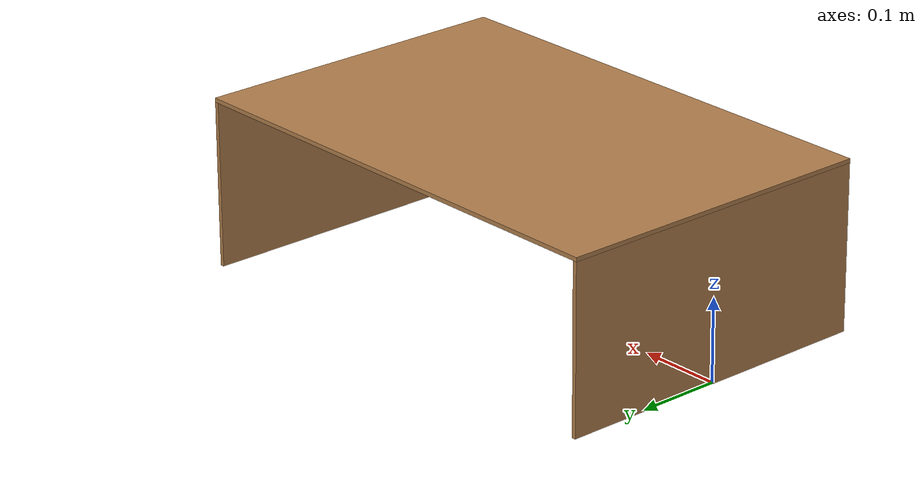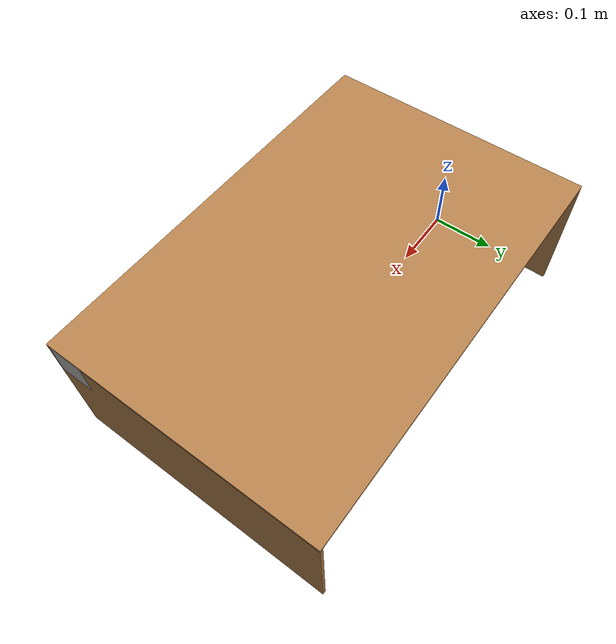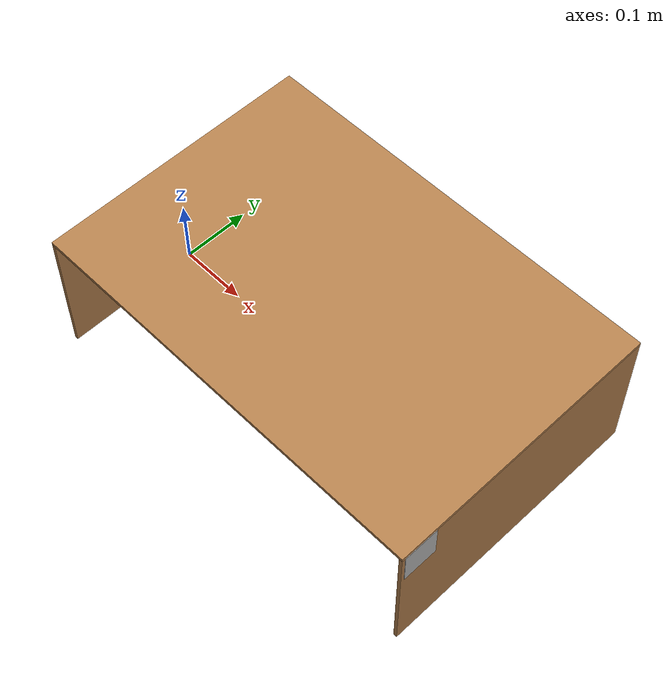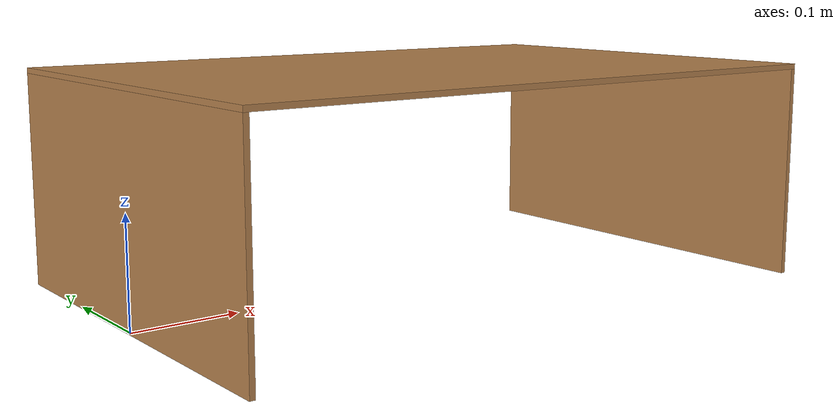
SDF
<?xml version='1.0'?>
<sdf version='1.7'>
  <model name='qr_table4'>

    <link name='table_leg_1'>

      <pose>0 0 0.1 0 0 0</pose>
	<static>false</static>
      <visual name='visual'>
        <pose>0 0 0 0 -0 0</pose>
        <geometry>
          <box>
            <size>0.005 0.4 0.2</size>
          </box>
        </geometry>
        <material>
          <lighting>1</lighting>
          <script>
            <uri>file://media/materials/scripts/gazebo.material</uri>
            <name>Gazebo/Wood</name>
          </script>
          <shader type='pixel'>
            <normal_map>__default__</normal_map>
          </shader>
          <ambient>0.3 0.3 0.3 1</ambient>
          <diffuse>0.7 0.7 0.7 1</diffuse>
          <specular>0.01 0.01 0.01 1</specular>
          <emissive>0 0 0 1</emissive>
        </material>
        <transparency>0</transparency>
        <cast_shadows>1</cast_shadows>
      </visual>

      <collision name="table_leg_1_collision">
        <pose>0 0 0.1 0 0 0</pose>
        <geometry>
          <box>
            <size>0.005 0.4 0.2</size>
          </box>
        </geometry>
      </collision>

    </link>

    <link name='table'>

      <pose>0.2975 0 0.2025 0 -0 0</pose>
	<static>false</static>
      <visual name='visual'>
        <pose>0.0 0 0 0 -0 0</pose>
        <geometry>
          <box>
            <size>0.6 0.4 0.005</size>
          </box>
        </geometry>
        <material>
          <lighting>1</lighting>
          <script>
            <uri>file://media/materials/scripts/gazebo.material</uri>
            <name>Gazebo/Wood</name>
          </script>
          <shader type='pixel'>
            <normal_map>__default__</normal_map>
          </shader>
          <ambient>0.3 0.3 0.3 1</ambient>
          <diffuse>0.7 0.7 0.7 1</diffuse>
          <specular>0.01 0.01 0.01 1</specular>
          <emissive>0 0 0 1</emissive>
        </material>
        <transparency>0</transparency>
        <cast_shadows>1</cast_shadows>
      </visual>

      <collision name="table_collision">
        <pose>0.0 0 0 0 -0 0</pose>
        <geometry>
          <box>
            <size>0.6 0.4 0.005</size>
          </box>
        </geometry>
      </collision>

    </link>

    <link name='table_leg_2'>
      <pose>0.595 0 0.1 0 -0 0</pose>
	<static>True</static>
      <visual name='visual'>
        <pose>0 0 0 0 -0 0</pose>
        <geometry>
          <box>
            <size>0.005 0.4 0.2</size>
          </box>
        </geometry>
        <material>
          <lighting>1</lighting>
          <script>
            <uri>file://media/materials/scripts/gazebo.material</uri>
            <name>Gazebo/Wood</name>
          </script>
          <shader type='pixel'>
            <normal_map>__default__</normal_map>
          </shader>
          <ambient>0.3 0.3 0.3 1</ambient>
          <diffuse>0.7 0.7 0.7 1</diffuse>
          <specular>0.01 0.01 0.01 1</specular>
          <emissive>0 0 0 1</emissive>
        </material>
        <transparency>0</transparency>
        <cast_shadows>1</cast_shadows>
      </visual>

      <collision name="table_leg_2_collision">
        <pose>0.0 0 0 0 -0 0</pose>
        <geometry>
          <box>
            <size>0.005 0.4 0.2</size>
          </box>
        </geometry>
      </collision>

    </link>

    <link name='qr_code'>
    	<pose>0.5975 -0.17 0.175 0 0 0</pose>
      <visual name='qr'>
      <pose>0 0 0 0 -0 0</pose>
        <geometry>
          <box>
            <size>0.001 0.05 0.05</size>
          </box>
        </geometry>
        <material>
          <script>

            <uri>model://qr_table1/materials/scripts</uri>
            <uri>model://qr_table1/materials/textures</uri>
            <name>qrs/Diffuse4</name>

          </script>
        </material>
      </visual>

      <collision name="qr_code_collision">
        <pose>0 0 0 0 -0 0</pose>
        <geometry>
          <box>
            <size>0.001 0.05 0.05</size>
          </box>
        </geometry>
      </collision>

    </link>

    <static>1</static>
    <allow_auto_disable>1</allow_auto_disable>
  </model>
</sdf>
